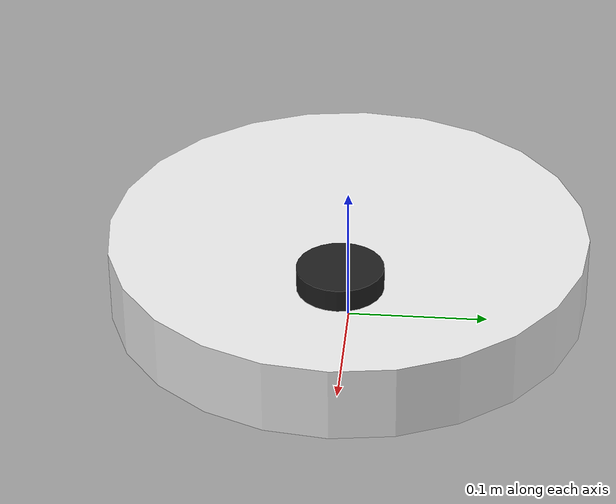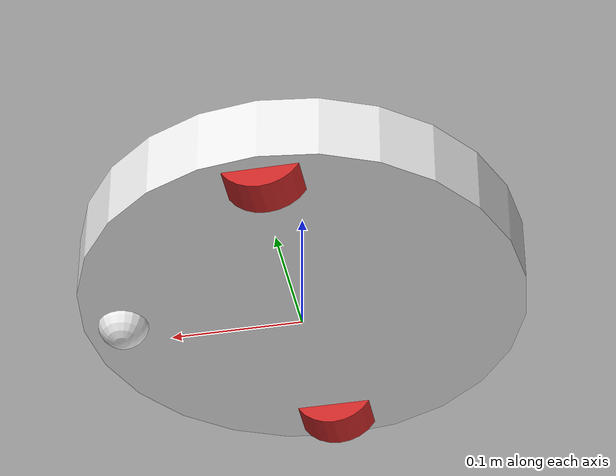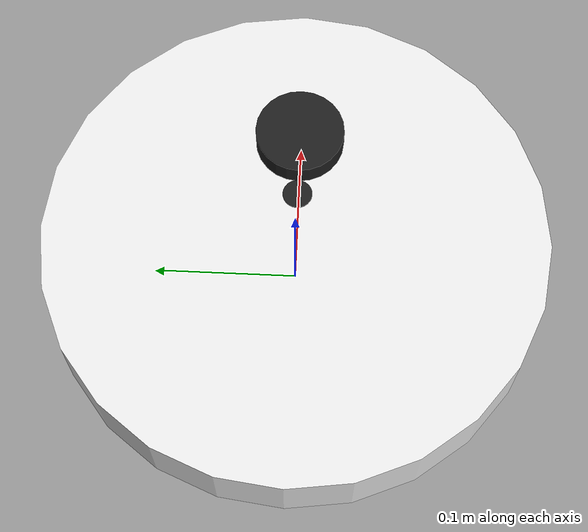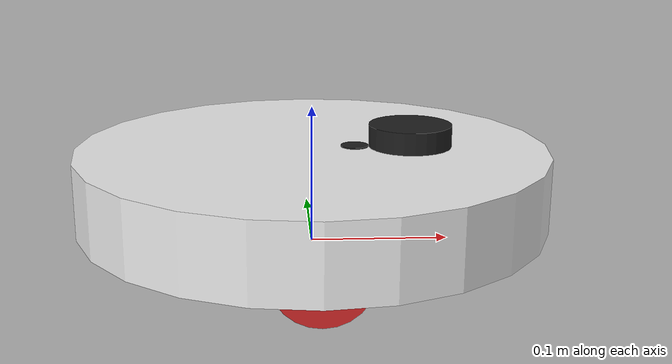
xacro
<?xml version="1.0" ?>
<robot name="makerspet_vac" xmlns:xacro="http://ros.org/wiki/xacro">
  <xacro:include filename="params.xacro" />
  <xacro:include filename="inertial.xacro" />
  <xacro:include filename="plugins.xacro" />
  <xacro:include filename="materials.xacro" />

  <link name="base_footprint"/>

  <joint name="base_joint" type="fixed">
    <parent link="base_footprint"/>
    <child link="base_link"/>
    <origin xyz="0 0 ${floor_clearance}" rpy="0 0 0"/>
  </joint>

  <link name="base_link">
    <visual>
      <origin xyz="0 0 ${lower_cylinder_height/2}" rpy="0 0 0"/>
      <geometry>
        <cylinder length="${lower_cylinder_height}" radius="${base_diameter/2}"/>
      </geometry>
      <material name="white"/>
    </visual>

    <collision>
      <origin xyz="0 0 ${lower_cylinder_height/2}" rpy="0 0 0"/>
      <geometry>
        <cylinder length="${lower_cylinder_height}" radius="${base_diameter/2}"/>
      </geometry>
    </collision>

    <xacro:solid_cylinder_inertia m="${lower_cylinder_mass}" r="${base_diameter/2}" h="${lower_cylinder_height}"/>
  </link>

  <joint name="caster_joint" type="fixed">
    <parent link="base_link"/>
    <child link="caster_link"/>
    <origin xyz="${-caster_inset+base_diameter/2} 0 ${caster_diameter/2-floor_clearance}" rpy="0 0 0"/>
  </joint>

  <link name="caster_link">
    <visual>
      <origin xyz="0 0 0" rpy="0 0 0"/>
      <geometry>
        <sphere radius="${caster_diameter/2}"/>
      </geometry>
      <material name="white"/>
    </visual>

   <collision>
      <origin xyz="0 0 0" rpy="0 0 0"/>
      <geometry>
        <sphere radius="${caster_diameter/2}"/>
      </geometry>
    </collision>

    <xacro:solid_sphere_inertia m="${caster_mass}" r="${caster_diameter/2}"/>
  </link>

  <joint name="wheel_left_joint" type="continuous">
    <parent link="base_link"/>
    <child link="wheel_left_link"/>
    <origin xyz="0 ${wheel_base/2} ${wheel_diameter/2-floor_clearance}" rpy="-${pi/2} 0 0"/>
    <axis xyz="0 0 1">
      <limit>
        <effort>${motor_stall_torque}</effort>
      </limit>
    </axis>
  </joint>

  <link name="wheel_left_link">
    <visual>
      <origin xyz="0 0 0" rpy="0 0 0"/>
      <geometry>
        <cylinder length="${wheel_width}" radius="${wheel_diameter/2}"/>
      </geometry>
      <material name="red"/>
    </visual>

    <collision>
      <origin xyz="0 0 0" rpy="0 0 0"/>
      <geometry>
        <cylinder length="${wheel_width}" radius="${wheel_diameter/2}"/>
      </geometry>
    </collision>

    <xacro:solid_cylinder_inertia m="${wheel_mass}" r="${wheel_diameter/2}" h="${wheel_width}"/>
  </link>

  <joint name="wheel_right_joint" type="continuous">
    <parent link="base_link"/>
    <child link="wheel_right_link"/>
    <origin xyz="0 ${-wheel_base/2} ${wheel_diameter/2-floor_clearance}" rpy="-${pi/2} 0 0"/>
    <axis xyz="0 0 1">
      <limit>
        <effort>${motor_stall_torque}</effort>
      </limit>
    </axis>
  </joint>

  <link name="wheel_right_link">
    <visual>
      <origin xyz="0 0 0" rpy="0 0 0"/>
      <geometry>
        <cylinder length="${wheel_width}" radius="${wheel_diameter/2}"/>
      </geometry>
      <material name="red"/>
    </visual>

    <collision>
      <origin xyz="0 0 0" rpy="0 0 0"/>
      <geometry>
        <cylinder length="${wheel_width}" radius="${wheel_diameter/2}"/>
      </geometry>
    </collision>

    <xacro:solid_cylinder_inertia m="${wheel_mass}" r="${wheel_diameter/2}" h="${wheel_width}"/>
  </link>

  <joint name="scan_joint" type="fixed">
    <parent link="base_link"/>
    <child link="base_scan"/>
    <origin xyz="${lidar_center_x_offset} 0 ${lower_cylinder_height + laser_puck_z_offset}" rpy="0 -${pi} 0"/>
  </joint>

  <link name="base_scan">
    <visual>
      <origin xyz="0 0 0" rpy="0 0 0"/>
      <geometry>
        <cylinder length="${laser_puck_height}" radius="${laser_puck_diameter/2}"/>
      </geometry>
      <material name="black"/>
    </visual>

    <collision>
      <origin xyz="0 0 0" rpy="0 0 0"/>
      <geometry>
        <cylinder length="${laser_puck_height}" radius="${laser_puck_diameter/2}"/>
      </geometry>
    </collision>

    <xacro:solid_cylinder_inertia m="${laser_puck_mass}" r="${laser_puck_diameter/2}" h="${laser_puck_height}"/>
  </link>

  <joint name="scan_motor_joint" type="fixed">
    <parent link="base_scan"/>
    <child link="scan_motor"/>
    <origin xyz="${lidar_motor_x_offset} 0 ${lidar_motor_z_offset}" rpy="0 -${pi} 0"/>
  </joint>

  <link name="scan_motor">
    <visual>
      <origin xyz="0 0 0" rpy="0 0 0"/>
      <geometry>
        <cylinder length="${laser_motor_height}" radius="${laser_motor_diameter/2}"/>
      </geometry>
      <material name="black"/>
    </visual>

    <collision>
      <origin xyz="0 0 0" rpy="0 0 0"/>
      <geometry>
        <cylinder length="${laser_motor_height}" radius="${laser_motor_diameter/2}"/>
      </geometry>
    </collision>

    <xacro:solid_cylinder_inertia m="${laser_motor_mass}" r="${laser_motor_diameter/2}" h="${laser_motor_height}"/>
  </link>

</robot>

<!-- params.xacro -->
<robot xmlns:xacro="http://ros.org/wiki/xacro">
  <!-- ****************** ROBOT DIMENSIONS ****************** -->
  <!-- Units: meters, degrees, kg, N*m, m/s2 -->
  <xacro:property name="wheel_diameter" value="0.065"/>
  <xacro:property name="wheel_width" value="0.029"/>
  <xacro:property name="caster_diameter" value="0.04"/>
  <!-- Caster center to base edge -->
  <xacro:property name="caster_inset" value="0.031"/>
  <xacro:property name="floor_clearance" value="0.0169"/>
  <xacro:property name="base_diameter" value="0.34"/>
  <xacro:property name="wheel_base" value="0.286236"/>
  <xacro:property name="lower_cylinder_height" value="0.054"/>
  <xacro:property name="laser_puck_height" value="0.016"/>
  <xacro:property name="laser_puck_diameter" value="0.06"/>
  <!-- xacro:property name="laser_puck_z_offset" value="0.0384"/ -->
  <xacro:property name="laser_puck_z_offset" value="0.008"/>
  <xacro:property name="laser_puck_offset" value="0.01"/>
  <xacro:property name="laser_motor_diameter" value="0.02"/>
  <xacro:property name="lidar_motor_x_offset" value="0.04"/>
  <xacro:property name="lidar_motor_z_offset" value="0.012"/>
  <xacro:property name="laser_motor_height" value="0.01"/>
  <!-- xacro:property name="head_height" value="0.0388"/ -->
  <xacro:property name="lidar_center_x_offset" value="0.071047"/>

  <xacro:property name="motor_stall_torque" value="0.171616375"/>
  <xacro:property name="max_linear_acceleration" value="1"/>
  <xacro:property name="lower_cylinder_mass" value="0.250"/>
  <!-- caster and battery weight -->
  <xacro:property name="caster_mass" value="0.050"/>
  <xacro:property name="wheel_mass" value="0.050"/>
  <xacro:property name="laser_puck_mass" value="0.150"/>
  <xacro:property name="laser_motor_mass" value="0.050"/>
  <xacro:property name="head_mass" value="0.200"/>

  <xacro:property name="DEG2RAD" value="0.0174533"/>
</robot>
